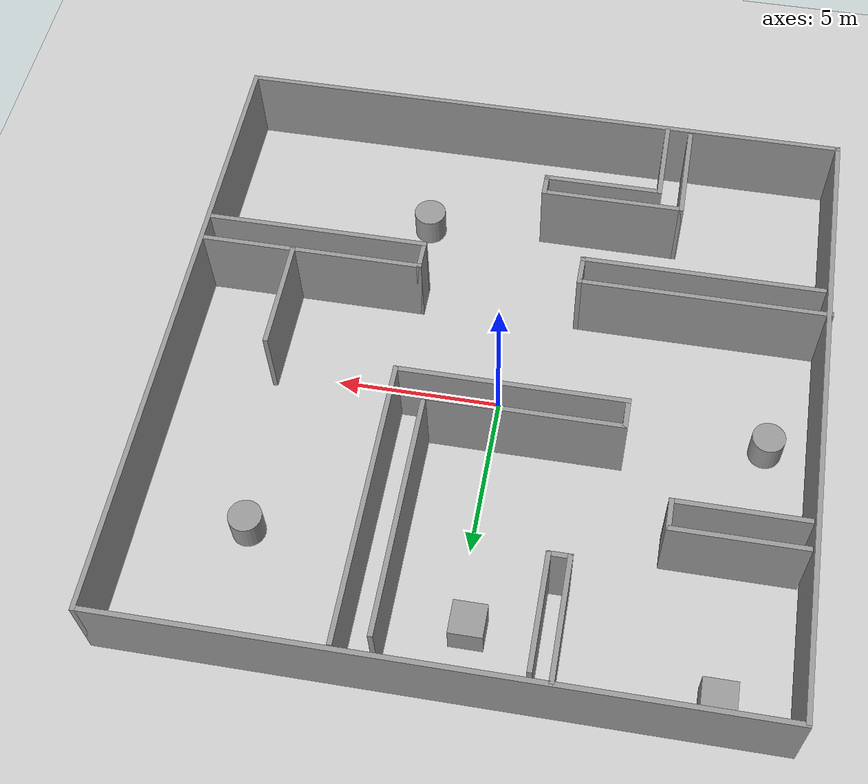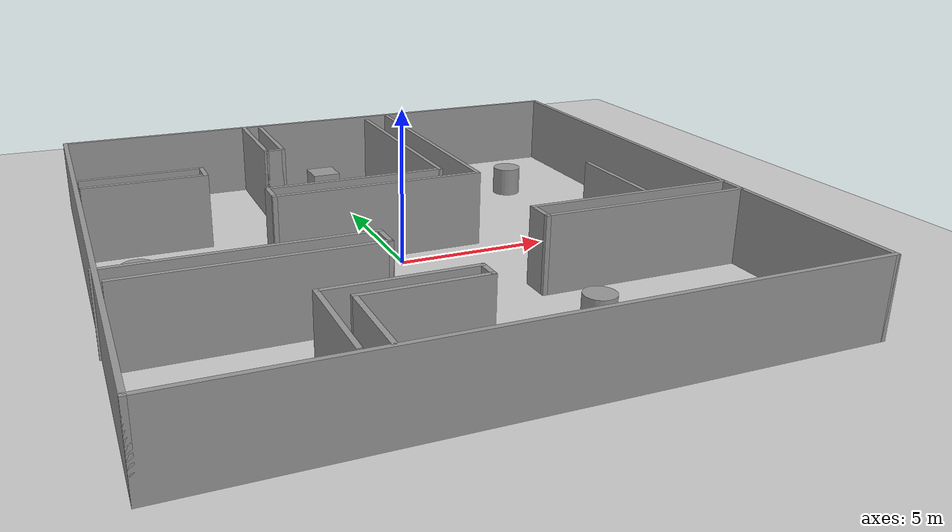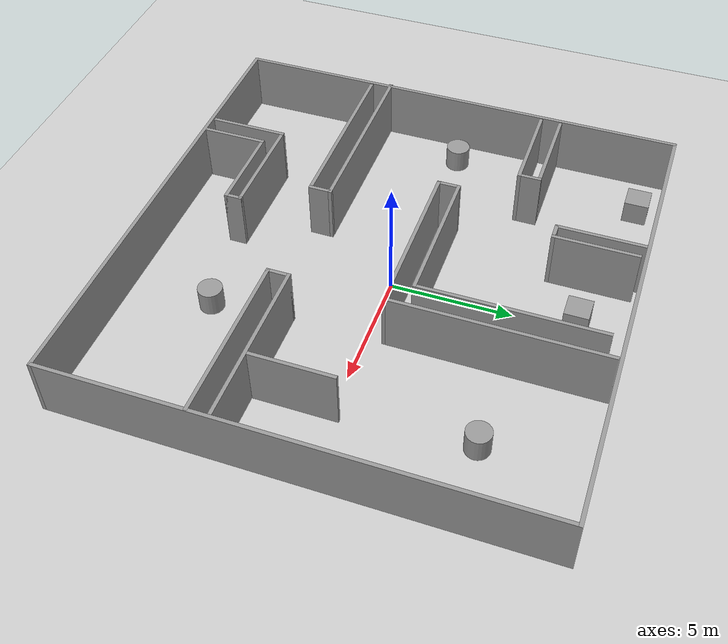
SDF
<sdf version="1.7">
 <world name="default">
  <light name="sun" type="directional">
   <pose>0 0 10 0 -0 0</pose>
   <diffuse>0.8 0.8 0.8 1</diffuse>
   <specular>0.2 0.2 0.2 1</specular>
   <attenuation>
    <range>1000</range>
    <constant>0.9</constant>
    <linear>0.01</linear>
    <quadratic>0.001</quadratic>
   </attenuation>
   <direction>-0.5 0.1 -0.9</direction>
   <spot><inner_angle>0</inner_angle><outer_angle>0</outer_angle><falloff>0</falloff></spot>
  </light>
  <model name="ground_plane">
   <static>1</static>
   <link name="link">
    <collision name="collision">
     <geometry><plane><normal>0 0 1</normal><size>100 100</size></plane></geometry>
     <surface><friction><ode><mu>100</mu><mu2>50</mu2></ode></friction></surface>
    </collision>
    <visual name="visual">
     <cast_shadows>0</cast_shadows>
     <geometry><plane><normal>0 0 1</normal><size>100 100</size></plane></geometry>
     <material>
      <script><uri>file://media/materials/scripts/gazebo.material</uri><name>Gazebo/Grey</name></script>
     </material>
    </visual>
   </link>
  </model>
  <gravity>0 0 -9.8</gravity>
  <magnetic_field>6e-06 2.3e-05 -4.2e-05</magnetic_field>
  <atmosphere type="adiabatic"/>
  <physics type="ode">
   <max_step_size>0.001</max_step_size>
   <real_time_factor>1</real_time_factor>
   <real_time_update_rate>1000</real_time_update_rate>
  </physics>
  <scene><ambient>0.4 0.4 0.4 1</ambient><background>0.7 0.7 0.7 1</background><shadows>1</shadows></scene>
  <audio><device>default</device></audio>
  <spherical_coordinates>
   <surface_model>EARTH_WGS84</surface_model>
   <latitude_deg>0</latitude_deg>
   <longitude_deg>0</longitude_deg>
   <elevation>0</elevation>
   <heading_deg>0</heading_deg>
  </spherical_coordinates>
  <model name="test2">
   <pose>0.158287 -0.199114 0 0 -0 0</pose>
   <link name="Wall_0">
    <collision name="Wall_0_Collision">
     <geometry><box><size>19.5 0.15 2.5</size></box></geometry>
     <pose>0 0 1.25 0 -0 0</pose>
    </collision>
    <visual name="Wall_0_Visual">
     <pose>0 0 1.25 0 -0 0</pose>
     <geometry><box><size>19.5 0.15 2.5</size></box></geometry>
     <material>
      <script><uri>file://media/materials/scripts/gazebo.material</uri><name>Gazebo/Grey</name></script>
      <ambient>1 1 1 1</ambient>
     </material>
     <meta><layer>0</layer></meta>
    </visual>
    <pose>0.026441 -9.675 0 0 -0 0</pose>
   </link>
   <link name="Wall_10">
    <collision name="Wall_10_Collision">
     <geometry><box><size>3.5 0.15 2.5</size></box></geometry>
     <pose>0 0 1.25 0 -0 0</pose>
    </collision>
    <visual name="Wall_10_Visual">
     <pose>0 0 1.25 0 -0 0</pose>
     <geometry><box><size>3.5 0.15 2.5</size></box></geometry>
     <material>
      <script><uri>file://media/materials/scripts/gazebo.material</uri><name>Gazebo/Grey</name></script>
      <ambient>1 1 1 1</ambient>
     </material>
     <meta><layer>0</layer></meta>
    </visual>
    <pose>-2.47767 7.71992 0 0 -0 1.5708</pose>
   </link>
   <link name="Wall_12">
    <collision name="Wall_12_Collision">
     <geometry><box><size>4 0.15 2.5</size></box></geometry>
     <pose>0 0 1.25 0 -0 0</pose>
    </collision>
    <visual name="Wall_12_Visual">
     <pose>0 0 1.25 0 -0 0</pose>
     <geometry><box><size>4 0.15 2.5</size></box></geometry>
     <material>
      <script><uri>file://media/materials/scripts/gazebo.material</uri><name>Gazebo/Grey</name></script>
      <ambient>1 1 1 1</ambient>
     </material>
     <meta><layer>0</layer></meta>
    </visual>
    <pose>-7.52644 4.75991 0 0 -0 0</pose>
   </link>
   <link name="Wall_13">
    <collision name="Wall_13_Collision">
     <geometry><box><size>1 0.15 2.5</size></box></geometry>
     <pose>0 0 1.25 0 -0 0</pose>
    </collision>
    <visual name="Wall_13_Visual">
     <pose>0 0 1.25 0 -0 0</pose>
     <geometry><box><size>1 0.15 2.5</size></box></geometry>
     <material>
      <script><uri>file://media/materials/scripts/gazebo.material</uri><name>Gazebo/Grey</name></script>
      <ambient>1 1 1 1</ambient>
     </material>
     <meta><layer>0</layer></meta>
    </visual>
    <pose>-5.60144 4.33491 0 0 -0 -1.5708</pose>
   </link>
   <link name="Wall_14">
    <collision name="Wall_14_Collision">
     <geometry><box><size>4 0.15 2.5</size></box></geometry>
     <pose>0 0 1.25 0 -0 0</pose>
    </collision>
    <visual name="Wall_14_Visual">
     <pose>0 0 1.25 0 -0 0</pose>
     <geometry><box><size>4 0.15 2.5</size></box></geometry>
     <material>
      <script><uri>file://media/materials/scripts/gazebo.material</uri><name>Gazebo/Grey</name></script>
      <ambient>1 1 1 1</ambient>
     </material>
     <meta><layer>0</layer></meta>
    </visual>
    <pose>-7.52644 3.90991 0 0 -0 3.14159</pose>
   </link>
   <link name="Wall_16">
    <collision name="Wall_16_Collision">
     <geometry><box><size>8.75 0.15 2.5</size></box></geometry>
     <pose>0 0 1.25 0 -0 0</pose>
    </collision>
    <visual name="Wall_16_Visual">
     <pose>0 0 1.25 0 -0 0</pose>
     <geometry><box><size>8.75 0.15 2.5</size></box></geometry>
     <material>
      <script><uri>file://media/materials/scripts/gazebo.material</uri><name>Gazebo/Grey</name></script>
      <ambient>1 1 1 1</ambient>
     </material>
     <meta><layer>0</layer></meta>
    </visual>
    <pose>2.78435 5.20535 0 0 -0 -1.5708</pose>
   </link>
   <link name="Wall_17">
    <collision name="Wall_17_Collision">
     <geometry><box><size>7 0.15 2.5</size></box></geometry>
     <pose>0 0 1.25 0 -0 0</pose>
    </collision>
    <visual name="Wall_17_Visual">
     <pose>0 0 1.25 0 -0 0</pose>
     <geometry><box><size>7 0.15 2.5</size></box></geometry>
     <material>
      <script><uri>file://media/materials/scripts/gazebo.material</uri><name>Gazebo/Grey</name></script>
      <ambient>1 1 1 1</ambient>
     </material>
     <meta><layer>0</layer></meta>
    </visual>
    <pose>-0.640652 0.905352 0 0 -0 3.14159</pose>
   </link>
   <link name="Wall_18">
    <collision name="Wall_18_Collision">
     <geometry><box><size>1 0.15 2.5</size></box></geometry>
     <pose>0 0 1.25 0 -0 0</pose>
    </collision>
    <visual name="Wall_18_Visual">
     <pose>0 0 1.25 0 -0 0</pose>
     <geometry><box><size>1 0.15 2.5</size></box></geometry>
     <material>
      <script><uri>file://media/materials/scripts/gazebo.material</uri><name>Gazebo/Grey</name></script>
      <ambient>1 1 1 1</ambient>
     </material>
     <meta><layer>0</layer></meta>
    </visual>
    <pose>-4.06565 1.33035 0 0 -0 1.5708</pose>
   </link>
   <link name="Wall_19">
    <collision name="Wall_19_Collision">
     <geometry><box><size>6 0.15 2.5</size></box></geometry>
     <pose>0 0 1.25 0 -0 0</pose>
    </collision>
    <visual name="Wall_19_Visual">
     <pose>0 0 1.25 0 -0 0</pose>
     <geometry><box><size>6 0.15 2.5</size></box></geometry>
     <material>
      <script><uri>file://media/materials/scripts/gazebo.material</uri><name>Gazebo/Grey</name></script>
      <ambient>1 1 1 1</ambient>
     </material>
     <meta><layer>0</layer></meta>
    </visual>
    <pose>-1.14065 1.75535 0 0 -0 0</pose>
   </link>
   <link name="Wall_2">
    <collision name="Wall_2_Collision">
     <geometry><box><size>19.5 0.15 2.5</size></box></geometry>
     <pose>0 0 1.25 0 -0 0</pose>
    </collision>
    <visual name="Wall_2_Visual">
     <pose>0 0 1.25 0 -0 0</pose>
     <geometry><box><size>19.5 0.15 2.5</size></box></geometry>
     <material>
      <script><uri>file://media/materials/scripts/gazebo.material</uri><name>Gazebo/Grey</name></script>
      <ambient>1 1 1 1</ambient>
     </material>
     <meta><layer>0</layer></meta>
    </visual>
    <pose>-9.64856 -0 0 0 -0 1.5708</pose>
   </link>
   <link name="Wall_20">
    <collision name="Wall_20_Collision">
     <geometry><box><size>7.5 0.15 2.5</size></box></geometry>
     <pose>0 0 1.25 0 -0 0</pose>
    </collision>
    <visual name="Wall_20_Visual">
     <pose>0 0 1.25 0 -0 0</pose>
     <geometry><box><size>7.5 0.15 2.5</size></box></geometry>
     <material>
      <script><uri>file://media/materials/scripts/gazebo.material</uri><name>Gazebo/Grey</name></script>
      <ambient>1 1 1 1</ambient>
     </material>
     <meta><layer>0</layer></meta>
    </visual>
    <pose>1.78435 5.43035 0 0 -0 1.5708</pose>
   </link>
   <link name="Wall_22">
    <collision name="Wall_22_Collision">
     <geometry><box><size>7 0.15 2.5</size></box></geometry>
     <pose>0 0 1.25 0 -0 0</pose>
    </collision>
    <visual name="Wall_22_Visual">
     <pose>0 0 1.25 0 -0 0</pose>
     <geometry><box><size>7 0.15 2.5</size></box></geometry>
     <material>
      <script><uri>file://media/materials/scripts/gazebo.material</uri><name>Gazebo/Grey</name></script>
      <ambient>1 1 1 1</ambient>
     </material>
     <meta><layer>0</layer></meta>
    </visual>
    <pose>6.24489 -3.70744 0 0 -0 3.14159</pose>
   </link>
   <link name="Wall_23">
    <collision name="Wall_23_Collision">
     <geometry><box><size>1 0.15 2.5</size></box></geometry>
     <pose>0 0 1.25 0 -0 0</pose>
    </collision>
    <visual name="Wall_23_Visual">
     <pose>0 0 1.25 0 -0 0</pose>
     <geometry><box><size>1 0.15 2.5</size></box></geometry>
     <material>
      <script><uri>file://media/materials/scripts/gazebo.material</uri><name>Gazebo/Grey</name></script>
      <ambient>1 1 1 1</ambient>
     </material>
     <meta><layer>0</layer></meta>
    </visual>
    <pose>2.81989 -3.28244 0 0 -0 1.5708</pose>
   </link>
   <link name="Wall_24">
    <collision name="Wall_24_Collision">
     <geometry><box><size>7 0.15 2.5</size></box></geometry>
     <pose>0 0 1.25 0 -0 0</pose>
    </collision>
    <visual name="Wall_24_Visual">
     <pose>0 0 1.25 0 -0 0</pose>
     <geometry><box><size>7 0.15 2.5</size></box></geometry>
     <material>
      <script><uri>file://media/materials/scripts/gazebo.material</uri><name>Gazebo/Grey</name></script>
      <ambient>1 1 1 1</ambient>
     </material>
     <meta><layer>0</layer></meta>
    </visual>
    <pose>6.24489 -2.85744 0 0 -0 0</pose>
   </link>
   <link name="Wall_26">
    <collision name="Wall_26_Collision">
     <geometry><box><size>3.5 0.15 2.5</size></box></geometry>
     <pose>0 0 1.25 0 -0 0</pose>
    </collision>
    <visual name="Wall_26_Visual">
     <pose>0 0 1.25 0 -0 0</pose>
     <geometry><box><size>3.5 0.15 2.5</size></box></geometry>
     <material>
      <script><uri>file://media/materials/scripts/gazebo.material</uri><name>Gazebo/Grey</name></script>
      <ambient>1 1 1 1</ambient>
     </material>
     <meta><layer>0</layer></meta>
    </visual>
    <pose>6.7854 -1.14848 0 0 -0 1.5708</pose>
   </link>
   <link name="Wall_28">
    <collision name="Wall_28_Collision">
     <geometry><box><size>7.5 0.15 2.5</size></box></geometry>
     <pose>0 0 1.25 0 -0 0</pose>
    </collision>
    <visual name="Wall_28_Visual">
     <pose>0 0 1.25 0 -0 0</pose>
     <geometry><box><size>7.5 0.15 2.5</size></box></geometry>
     <material>
      <script><uri>file://media/materials/scripts/gazebo.material</uri><name>Gazebo/Grey</name></script>
      <ambient>1 1 1 1</ambient>
     </material>
     <meta><layer>0</layer></meta>
    </visual>
    <pose>-5.77644 -3.94006 0 0 -0 0</pose>
   </link>
   <link name="Wall_29">
    <collision name="Wall_29_Collision">
     <geometry><box><size>1 0.15 2.5</size></box></geometry>
     <pose>0 0 1.25 0 -0 0</pose>
    </collision>
    <visual name="Wall_29_Visual">
     <pose>0 0 1.25 0 -0 0</pose>
     <geometry><box><size>1 0.15 2.5</size></box></geometry>
     <material>
      <script><uri>file://media/materials/scripts/gazebo.material</uri><name>Gazebo/Grey</name></script>
      <ambient>1 1 1 1</ambient>
     </material>
     <meta><layer>0</layer></meta>
    </visual>
    <pose>-2.10144 -3.51506 0 0 -0 1.5708</pose>
   </link>
   <link name="Wall_30">
    <collision name="Wall_30_Collision">
     <geometry><box><size>7.75 0.15 2.5</size></box></geometry>
     <pose>0 0 1.25 0 -0 0</pose>
    </collision>
    <visual name="Wall_30_Visual">
     <pose>0 0 1.25 0 -0 0</pose>
     <geometry><box><size>7.75 0.15 2.5</size></box></geometry>
     <material>
      <script><uri>file://media/materials/scripts/gazebo.material</uri><name>Gazebo/Grey</name></script>
      <ambient>1 1 1 1</ambient>
     </material>
     <meta><layer>0</layer></meta>
    </visual>
    <pose>-5.90144 -3.09006 0 0 -0 3.14159</pose>
   </link>
   <link name="Wall_32">
    <collision name="Wall_32_Collision">
     <geometry><box><size>3.25 0.15 2.5</size></box></geometry>
     <pose>0 0 1.25 0 -0 0</pose>
    </collision>
    <visual name="Wall_32_Visual">
     <pose>0 0 1.25 0 -0 0</pose>
     <geometry><box><size>3.25 0.15 2.5</size></box></geometry>
     <material>
      <script><uri>file://media/materials/scripts/gazebo.material</uri><name>Gazebo/Grey</name></script>
      <ambient>1 1 1 1</ambient>
     </material>
     <meta><layer>0</layer></meta>
    </visual>
    <pose>-4.8921 -7.9264 0 0 -0 1.5708</pose>
   </link>
   <link name="Wall_33">
    <collision name="Wall_33_Collision">
     <geometry><box><size>4.5 0.15 2.5</size></box></geometry>
     <pose>0 0 1.25 0 -0 0</pose>
    </collision>
    <visual name="Wall_33_Visual">
     <pose>0 0 1.25 0 -0 0</pose>
     <geometry><box><size>4.5 0.15 2.5</size></box></geometry>
     <material>
      <script><uri>file://media/materials/scripts/gazebo.material</uri><name>Gazebo/Grey</name></script>
      <ambient>1 1 1 1</ambient>
     </material>
     <meta><layer>0</layer></meta>
    </visual>
    <pose>-2.7171 -6.3764 0 0 -0 0</pose>
   </link>
   <link name="Wall_34">
    <collision name="Wall_34_Collision">
     <geometry><box><size>0.75 0.15 2.5</size></box></geometry>
     <pose>0 0 1.25 0 -0 0</pose>
    </collision>
    <visual name="Wall_34_Visual">
     <pose>0 0 1.25 0 -0 0</pose>
     <geometry><box><size>0.75 0.15 2.5</size></box></geometry>
     <material>
      <script><uri>file://media/materials/scripts/gazebo.material</uri><name>Gazebo/Grey</name></script>
      <ambient>1 1 1 1</ambient>
     </material>
     <meta><layer>0</layer></meta>
    </visual>
    <pose>-0.542098 -6.6764 0 0 -0 -1.5708</pose>
   </link>
   <link name="Wall_35">
    <collision name="Wall_35_Collision">
     <geometry><box><size>3.75 0.15 2.5</size></box></geometry>
     <pose>0 0 1.25 0 -0 0</pose>
    </collision>
    <visual name="Wall_35_Visual">
     <pose>0 0 1.25 0 -0 0</pose>
     <geometry><box><size>3.75 0.15 2.5</size></box></geometry>
     <material>
      <script><uri>file://media/materials/scripts/gazebo.material</uri><name>Gazebo/Grey</name></script>
      <ambient>1 1 1 1</ambient>
     </material>
     <meta><layer>0</layer></meta>
    </visual>
    <pose>-2.3421 -6.9764 0 0 -0 3.14159</pose>
   </link>
   <link name="Wall_36">
    <collision name="Wall_36_Collision">
     <geometry><box><size>2.75 0.15 2.5</size></box></geometry>
     <pose>0 0 1.25 0 -0 0</pose>
    </collision>
    <visual name="Wall_36_Visual">
     <pose>0 0 1.25 0 -0 0</pose>
     <geometry><box><size>2.75 0.15 2.5</size></box></geometry>
     <material>
      <script><uri>file://media/materials/scripts/gazebo.material</uri><name>Gazebo/Grey</name></script>
      <ambient>1 1 1 1</ambient>
     </material>
     <meta><layer>0</layer></meta>
    </visual>
    <pose>-4.1421 -8.2764 0 0 -0 -1.5708</pose>
   </link>
   <link name="Wall_4">
    <collision name="Wall_4_Collision">
     <geometry><box><size>19.5 0.15 2.5</size></box></geometry>
     <pose>0 0 1.25 0 -0 0</pose>
    </collision>
    <visual name="Wall_4_Visual">
     <pose>0 0 1.25 0 -0 0</pose>
     <geometry><box><size>19.5 0.15 2.5</size></box></geometry>
     <material>
      <script><uri>file://media/materials/scripts/gazebo.material</uri><name>Gazebo/Grey</name></script>
      <ambient>1 1 1 1</ambient>
     </material>
     <meta><layer>0</layer></meta>
    </visual>
    <pose>0.026441 9.675 0 0 -0 0</pose>
   </link>
   <link name="Wall_6">
    <collision name="Wall_6_Collision">
     <geometry><box><size>19.5 0.15 2.5</size></box></geometry>
     <pose>0 0 1.25 0 -0 0</pose>
    </collision>
    <visual name="Wall_6_Visual">
     <pose>0 0 1.25 0 -0 0</pose>
     <geometry><box><size>19.5 0.15 2.5</size></box></geometry>
     <material>
      <script><uri>file://media/materials/scripts/gazebo.material</uri><name>Gazebo/Grey</name></script>
      <ambient>1 1 1 1</ambient>
     </material>
     <meta><layer>0</layer></meta>
    </visual>
    <pose>9.70144 -0 0 0 -0 -1.5708</pose>
   </link>
   <link name="Wall_8">
    <collision name="Wall_8_Collision">
     <geometry><box><size>3.75 0.15 2.5</size></box></geometry>
     <pose>0 0 1.25 0 -0 0</pose>
    </collision>
    <visual name="Wall_8_Visual">
     <pose>0 0 1.25 0 -0 0</pose>
     <geometry><box><size>3.75 0.15 2.5</size></box></geometry>
     <material>
      <script><uri>file://media/materials/scripts/gazebo.material</uri><name>Gazebo/Grey</name></script>
      <ambient>1 1 1 1</ambient>
     </material>
     <meta><layer>0</layer></meta>
    </visual>
    <pose>-3.07767 7.84492 0 0 -0 -1.5708</pose>
   </link>
   <link name="Wall_9">
    <collision name="Wall_9_Collision">
     <geometry><box><size>0.75 0.15 2.5</size></box></geometry>
     <pose>0 0 1.25 0 -0 0</pose>
    </collision>
    <visual name="Wall_9_Visual">
     <pose>0 0 1.25 0 -0 0</pose>
     <geometry><box><size>0.75 0.15 2.5</size></box></geometry>
     <material>
      <script><uri>file://media/materials/scripts/gazebo.material</uri><name>Gazebo/Grey</name></script>
      <ambient>1 1 1 1</ambient>
     </material>
     <meta><layer>0</layer></meta>
    </visual>
    <pose>-2.77766 6.04492 0 0 -0 0</pose>
   </link>
   <static>1</static>
  </model>
  <model name="unit_cylinder">
   <pose>3.30962 -6.33824 0.499992 -3e-06 -4e-06 -0</pose>
   <link name="link">
    <inertial>
     <mass>1</mass>
     <inertia><ixx>0.145833</ixx><ixy>0</ixy><ixz>0</ixz><iyy>0.145833</iyy><iyz>0</iyz><izz>0.125</izz></inertia>
    </inertial>
    <collision name="collision">
     <geometry><cylinder><radius>0.5</radius><length>1</length></cylinder></geometry>
    </collision>
    <visual name="visual">
     <geometry><cylinder><radius>0.5</radius><length>1</length></cylinder></geometry>
     <material>
      <script><name>Gazebo/Grey</name><uri>file://media/materials/scripts/gazebo.material</uri></script>
     </material>
    </visual>
   </link>
  </model>
  <model name="unit_cylinder_0">
   <pose>6.47504 5.40111 0.499993 -3e-06 -3e-06 0</pose>
   <link name="link">
    <inertial>
     <mass>1</mass>
     <inertia><ixx>0.145833</ixx><ixy>0</ixy><ixz>0</ixz><iyy>0.145833</iyy><iyz>0</iyz><izz>0.125</izz></inertia>
    </inertial>
    <collision name="collision">
     <geometry><cylinder><radius>0.5</radius><length>1</length></cylinder></geometry>
    </collision>
    <visual name="visual">
     <geometry><cylinder><radius>0.5</radius><length>1</length></cylinder></geometry>
     <material>
      <script><name>Gazebo/Grey</name><uri>file://media/materials/scripts/gazebo.material</uri></script>
     </material>
    </visual>
   </link>
  </model>
  <model name="unit_box">
   <pose>-7.36294 8.5409 0.499995 0 1e-05 0</pose>
   <link name="link">
    <inertial>
     <mass>1</mass>
     <inertia>
      <ixx>0.166667</ixx>
      <ixy>0</ixy>
      <ixz>0</ixz>
      <iyy>0.166667</iyy>
      <iyz>0</iyz>
      <izz>0.166667</izz>
     </inertia>
    </inertial>
    <collision name="collision"><geometry><box><size>1 1 1</size></box></geometry></collision>
    <visual name="visual">
     <geometry><box><size>1 1 1</size></box></geometry>
     <material>
      <script><name>Gazebo/Grey</name><uri>file://media/materials/scripts/gazebo.material</uri></script>
     </material>
    </visual>
   </link>
  </model>
  <model name="unit_box_0">
   <pose>-0.367307 7.45573 0.499995 -1e-05 -0 0</pose>
   <link name="link">
    <inertial>
     <mass>1</mass>
     <inertia>
      <ixx>0.166667</ixx>
      <ixy>0</ixy>
      <ixz>0</ixz>
      <iyy>0.166667</iyy>
      <iyz>0</iyz>
      <izz>0.166667</izz>
     </inertia>
    </inertial>
    <collision name="collision"><geometry><box><size>1 1 1</size></box></geometry></collision>
    <visual name="visual">
     <geometry><box><size>1 1 1</size></box></geometry>
     <material>
      <script><name>Gazebo/Grey</name><uri>file://media/materials/scripts/gazebo.material</uri></script>
     </material>
    </visual>
   </link>
  </model>
  <model name="unit_cylinder_1">
   <pose>-8.16193 0.368742 0.499997 3e-06 4e-06 -0</pose>
   <link name="link">
    <inertial>
     <mass>1</mass>
     <inertia><ixx>0.145833</ixx><ixy>0</ixy><ixz>0</ixz><iyy>0.145833</iyy><iyz>0</iyz><izz>0.125</izz></inertia>
    </inertial>
    <collision name="collision">
     <geometry><cylinder><radius>0.5</radius><length>1</length></cylinder></geometry>
    </collision>
    <visual name="visual">
     <geometry><cylinder><radius>0.5</radius><length>1</length></cylinder></geometry>
     <material>
      <script><name>Gazebo/Grey</name><uri>file://media/materials/scripts/gazebo.material</uri></script>
     </material>
    </visual>
   </link>
  </model>
 </world>
</sdf>
